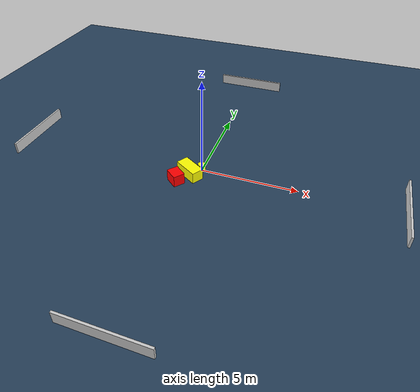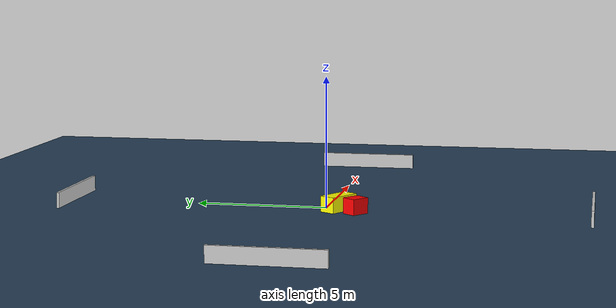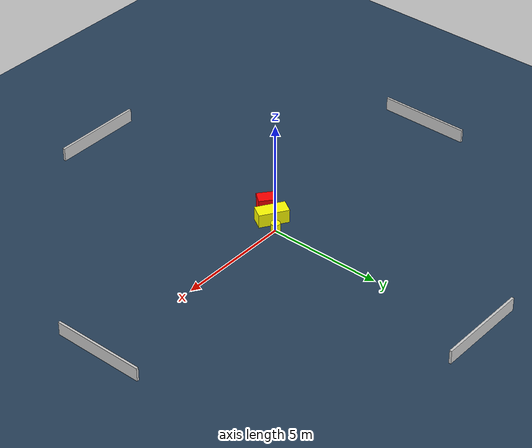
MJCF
<?xml version="1.0" ?>
<mujoco model="generated_environment">
  <option timestep="0.01" integrator="RK4" cone="elliptic"/>
  <default>
    <geom density="1"/>
  </default>
  <asset>
    <texture builtin="gradient" height="3072" name="skybox" rgb1="0.3 0.5 0.7" rgb2="0 0 0" type="skybox" width="512"/>
    <texture builtin="checker" height="300" name="groundplane" rgb1="0.2 0.3 0.4" rgb2="0.1 0.2 0.3" type="2d" width="300"/>
    <material name="groundplane" reflectance="0.2" texrepeat="5 5" texture="groundplane"/>
  </asset>
  <worldbody>
    <light dir="0 0 -1" directional="true" pos="0 0 1.5"/>
    <geom condim="3" friction="0.5 0.005 0.001" material="groundplane" name="floor" pos="0 0 0" size="0 0 0.05" type="plane"/>
    <body name="walls">
      <geom name="wall_1" condim="4" pos="-10.0 0.0 0.3" rgba="0.800000011920929 0.800000011920929 0.800000011920929 1.0" size="0.05 2.0 0.3" type="box"/>
      <geom name="wall_2" condim="4" pos="10.0 0.0 0.3" rgba="0.800000011920929 0.800000011920929 0.800000011920929 1.0" size="0.05 2.0 0.3" type="box"/>
      <geom name="wall_3" condim="4" pos="0.0 -10.0 0.3" rgba="0.800000011920929 0.800000011920929 0.800000011920929 1.0" size="2.0 0.05 0.3" type="box"/>
      <geom name="wall_4" condim="4" pos="0.0 10.0 0.3" rgba="0.800000011920929 0.800000011920929 0.800000011920929 1.0" size="2.0 0.05 0.3" type="box"/>
    </body>
    <body name="robot">
      <joint name="joint_x" type="slide" pos="0 0 0" axis="1 0 0"/>
      <joint name="joint_y" type="slide" pos="0 0 0" axis="0 1 0"/>
      <geom name="robot" type="cylinder" pos="0.0 0.0 0.2" size="0.2 0.2 0.0" mass="5.0" friction="1.0 0.005 0.0001" condim="4" rgba="1.0 1.0 0.0 1.0"/>
    </body>
    <body name="obstacle_1_movable">
      <geom name="obstacle_1_movable" condim="4" pos="-0.4376202527355062 -0.5571180787893015 0.3" euler="0 0 328.251241220195" friction="0.0 0.005 0.001" rgba="1.0 1.0 0.0 1.0" size="0.6543039937203998 0.31916879513253194 0.3" type="box" mass="0.1"/>
      <joint type="free"/>
    </body>
    <body name="obstacle_2_static">
      <geom name="obstacle_2_static" condim="4" pos="-0.9127005249221474 -1.2851418974334183 0.3" euler="0 0 51.15674934428958" friction="0.0 0.005 0.001" rgba="1.0 0.0 0.0 1.0" size="0.29452962906891067 0.3579408029190694 0.3" type="box"/>
    </body>
  </worldbody>
  <actuator>
    <motor name="actuator_x" joint="joint_x" gear="1" ctrlrange="-1 1"/>
    <motor name="actuator_y" joint="joint_y" gear="1" ctrlrange="-1 1"/>
  </actuator>
</mujoco>
